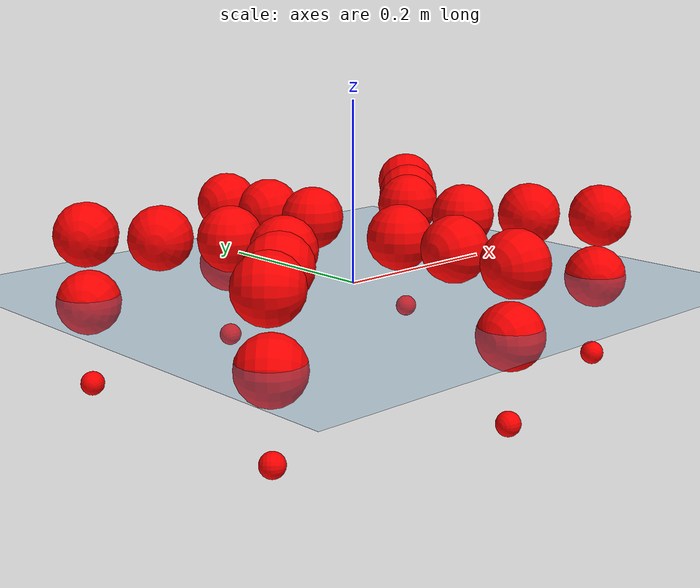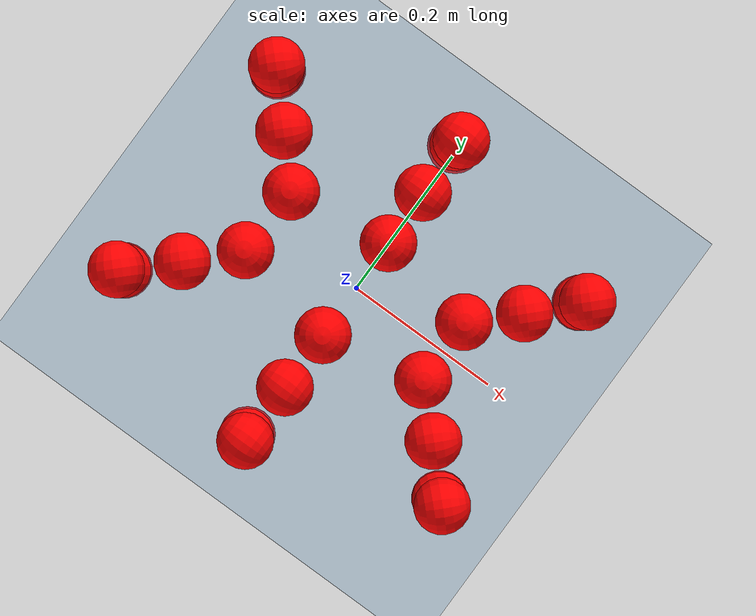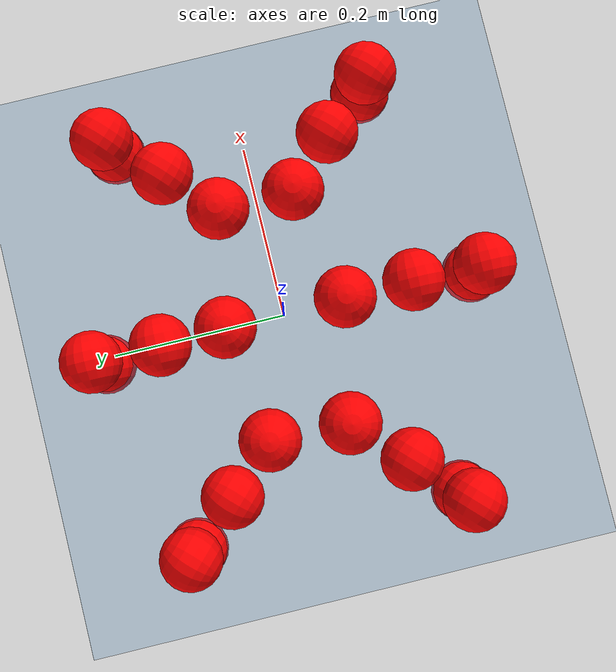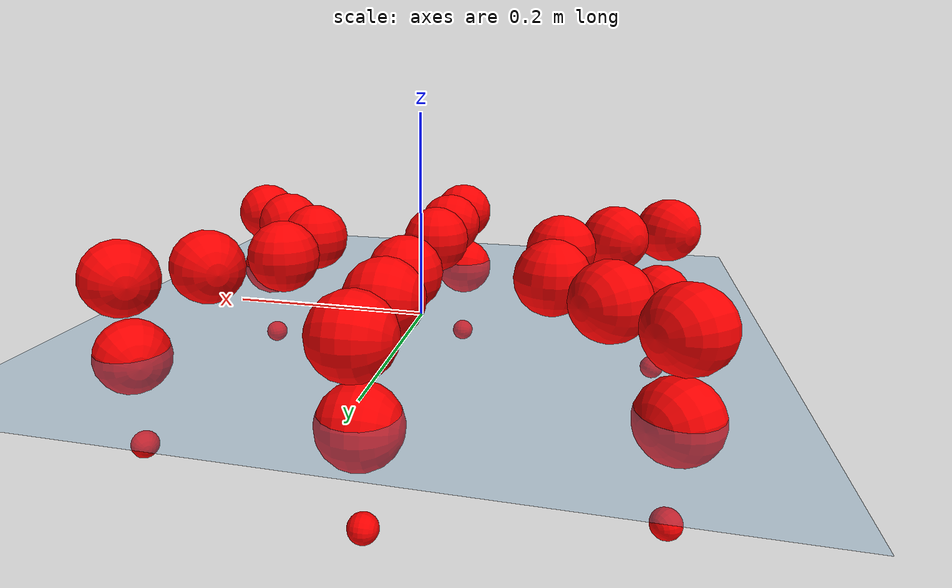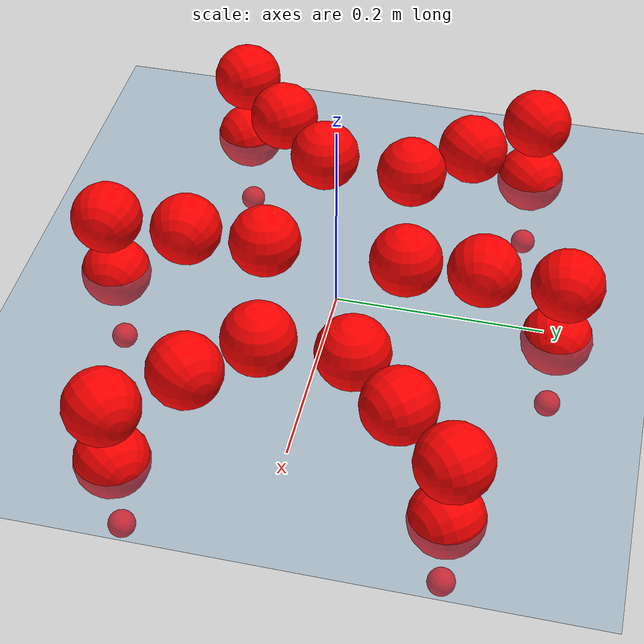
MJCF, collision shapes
<mujoco model="Golem">
  <compiler angle="radian" assetdir="assets" balanceinertia="true" inertiafromgeom="false"/>

  <option timestep="0.005" density="1.2" viscosity="2e-05"/>

  <size nkey="1"/>

  <visual>
    <quality shadowsize="8192"/>
    <map shadowclip="0.5"/>
  </visual>

  <default>
    <default class="/">
      <joint armature="0.01" damping="0.01" frictionloss="0.01"/>
      <geom contype="0" conaffinity="0" group="1" solref="-1000 -80"/>
      <site size="0.01 0.005 0.005" group="5"/>
      <general forcelimited="true" biastype="affine" gainprm="25" biasprm="0 -25 -0.5"/>
      <default class="visual">
        <geom type="mesh" group="2"/>
      </default>
      <default class="collision">
        <geom group="3"/>
      </default>
      <default class="foot">
        <geom size="0.01 0 0" condim="6" group="4" priority="1" solimp="0.015 1 0.01"/>
      </default>
      <default class="reward_collision_sphere">
        <geom group="5" rgba="1 0 0 1"/>
      </default>
    </default>
  </default>

  <asset>
    <texture type="skybox" colorspace="auto" name="//unnamed_texture_0" builtin="gradient" rgb1="0.95 0.95 0.95" rgb2="0.95 0.95 0.95" width="100" height="600"/>
    <texture type="2d" colorspace="auto" name="texplane" builtin="checker" rgb1="0.345 0.575 0.748" rgb2="0.345 0.575 0.748" markrgb="1 1 1" width="512" height="512"/>
    <material name="MatPlane" class="/" texture="texplane" texuniform="true" texrepeat="2 2" specular="0.9"/>
    <mesh name="body" class="/" file="body.stl" scale="0.001 0.001 0.001"/>
    <mesh name="coxa" class="/" file="coxa.stl" scale="0.001 0.001 0.001"/>
    <mesh name="femur" class="/" file="femur.stl" scale="0.001 0.001 0.001"/>
    <mesh name="tibia" class="/" file="tibia.stl" scale="0.001 0.001 0.001"/>
    <mesh name="tarsus" class="/" file="tarsus.stl" scale="0.001 0.001 0.001"/>
  </asset>

  <worldbody>
    <geom name="floor" class="/" size="100 100 0.125" type="plane" group="0" material="MatPlane"/>
    <light name="toplight_shadow" class="/" pos="0 0 5" dir="0.0990148 0.0990148 -0.990148" type="directional" ambient="0.04 0.04 0.04" diffuse="0.55 0.55 0.55" specular="0.12 0.12 0.12"/>
    <light name="toplight_fill" class="/" pos="0 0 5" dir="0.0990148 0.0990148 -0.990148" type="directional" castshadow="false" ambient="0.04 0.04 0.04" diffuse="0.3 0.3 0.3" specular="0.08 0.08 0.08"/>
    <body name="trunk" pos="-0.000540613 -0.000206732 -0.00228711" quat="0.999999 -0.000409633 -0.00102486 -5.57247e-05">
      <inertial pos="0.00017901 0.00242071 -0.0045586" quat="0.999957 -0.00623369 -0.00659302 0.00212272" mass="2.46092" diaginertia="0.00429464 0.00200158 0.0125286"/>
      <joint name="//unnamed_joint_0" type="free"/>
      <geom name="//unnamed_geom_1" class="/" pos="0 0 0.0664475" quat="1 0 0 0" type="mesh" rgba="0.9 0.9 0.9 1" mesh="body"/>
      <site name="imu" class="/" pos="0.0986653 0.0010185 0.117147" size="0.00867379"/>
      <camera name="track" class="/" pos="0 -1.4501 0" quat="0.707107 0.707107 0 0" mode="trackcom"/>
      <camera name="ego_camera" class="/" pos="0.10905 0 0.103824" quat="-0.5 -0.5 0.5 0.5"/>
      <body name="coxa_RR" pos="-0.151308 -0.059559 0.0678657" quat="0.382096 -0.000368959 -6.88582e-05 -0.924122">
        <inertial pos="-0.00199758 -0.00261205 -0.000810791" quat="0.999914 -0.00151345 0.00591548 0.0116423" mass="0.133934" diaginertia="0.00412649 0.00198264 0.0118293"/>
        <joint name="coxa_joint_RR" class="/" pos="0 0 0" axis="-0.00909333 -0.00296211 -0.999954" range="-3.18323 3.12867" armature="0.00832255" damping="0.018113" frictionloss="0.00980959"/>
        <geom name="//unnamed_geom_2" class="/" type="mesh" rgba="0.2 0.2 0.2 1" mesh="coxa"/>
        <geom name="//unnamed_geom_3" class="reward_collision_sphere" size="0.0346951" pos="-0.0251653 0 0"/>
        <body name="femur_RR" pos="0.0516353 0.00170399 0.00117623" quat="0.500085 -0.500094 0.499935 0.499886">
          <inertial pos="0.00111436 -0.00184529 0.00230462" quat="1 -0.000182511 -0.000255336 -0.000158948" mass="0.129393" diaginertia="0.00413949 0.00198006 0.0116465"/>
          <joint name="femur_joint_RR" class="/" pos="0 0 0" axis="-0.00908816 0.00897873 -0.999918" range="-3.12463 3.12821" armature="0.00775483" damping="0" frictionloss="0.008253"/>
          <geom name="//unnamed_geom_4" class="/" type="mesh" rgba="0.9 0.9 0.9 1" mesh="femur"/>
          <geom name="//unnamed_geom_5" class="reward_collision_sphere" size="0.0346951"/>
          <body name="tibia_RR" pos="-0.000167381 -0.0796535 -0.00250307" quat="6.23249e-05 1 2.27999e-05 3.16926e-06">
            <inertial pos="-0.00220328 0.00256306 -0.0023074" quat="0.999917 0.00861182 -0.00506724 -0.00815548" mass="0.128321" diaginertia="0.00389629 0.00194157 0.0116507"/>
            <joint name="tibia_joint_RR" class="/" pos="0 0 0" axis="0.00543656 -0.00209777 0.999983" range="-3.1401 3.08254" armature="0.0087427" damping="0.0162237" frictionloss="0.00825666"/>
            <geom name="//unnamed_geom_6" class="/" type="mesh" rgba="0.2 0.2 0.2 1" mesh="tibia"/>
            <geom name="//unnamed_geom_7" class="reward_collision_sphere" size="0.0346951"/>
            <body name="tarsus_RR" pos="0.0760237 -0.00211485 -0.000948606" quat="0.999999 0.000602708 -0.000212003 0.00106025">
              <inertial pos="0.0518295 -0.00173129 0.00172505" quat="0.499383 0.499808 0.499777 0.50103" mass="0.130933" diaginertia="0.00416044 0.00214109 0.012424"/>
              <joint name="tarsus_joint_RR" class="/" pos="0 0 0" axis="0.00100211 -0.0019139 0.999998" range="-3.14563 3.16116" armature="0.00874947" damping="0" frictionloss="0.00897592"/>
              <geom name="//unnamed_geom_8" class="/" type="mesh" rgba="0.9 0.9 0.9 1" mesh="tarsus"/>
              <geom name="foot_1" class="foot" size="0.00889818" pos="0.0939506 0 0" quat="0 -0.707107 0 0.707107"/>
              <geom name="//unnamed_geom_10" class="reward_collision_sphere" size="0.0346951"/>
              <geom name="//unnamed_geom_11" class="reward_collision_sphere" size="0.0130107" pos="0.0901758 0 0"/>
              <site name="foot_1" class="foot" pos="0.0939506 0 0" quat="0 -0.707107 0 0.707107" size="0.00867379"/>
            </body>
          </body>
        </body>
      </body>
      <body name="coxa_RM" pos="0.00148898 -0.0943559 0.064354" quat="0.706836 0.000425702 0.000815458 -0.707377">
        <inertial pos="0.000369597 -0.00265013 -0.0013657" quat="0.999992 0.00200357 0.00328385 0.000713629" mass="0.125088" diaginertia="0.00386547 0.00187107 0.0118772"/>
        <joint name="coxa_joint_RM" class="/" pos="0 0 0" axis="0.000851528 0.000330057 -1" stiffness="0.00683506" range="-3.14619 3.15441" armature="0.00781398" damping="0.0154152" frictionloss="0.00985831"/>
        <geom name="//unnamed_geom_12" class="/" type="mesh" rgba="0.2 0.2 0.2 1" mesh="coxa"/>
        <geom name="//unnamed_geom_13" class="reward_collision_sphere" size="0.0346951" pos="-0.0251653 0 0"/>
        <body name="femur_RM" pos="0.0523858 0.00042431 0.000399049" quat="0.500495 -0.500075 0.499671 0.499758">
          <inertial pos="7.15865e-05 -0.00278258 -0.000436801" quat="0.999943 0.0106271 2.38077e-05 -0.000955741" mass="0.132221" diaginertia="0.00430131 0.00195883 0.0122159"/>
          <joint name="femur_joint_RM" class="/" pos="0 0 0" axis="-0.00196021 0.00647476 -0.999977" range="-3.19414 3.19318" armature="0.00954372" damping="0.0253663" frictionloss="0.00894662"/>
          <geom name="//unnamed_geom_14" class="/" type="mesh" rgba="0.9 0.9 0.9 1" mesh="femur"/>
          <geom name="//unnamed_geom_15" class="reward_collision_sphere" size="0.0346951"/>
          <body name="tibia_RM" pos="0.000846049 -0.0799129 -0.000617191" quat="-9.84609e-06 1 -0.000101341 -0.000242553">
            <inertial pos="-0.00116197 -0.00077399 -0.00237539" quat="0.999906 0.00453513 0.0116875 0.00560567" mass="0.122297" diaginertia="0.0040913 0.00193451 0.0120133"/>
            <joint name="tibia_joint_RM" class="/" pos="0 0 0" axis="0.00011926 -0.00164481 0.999999" stiffness="0.00868105" range="-3.19504 3.08574" armature="0.00740699" damping="0" frictionloss="0.00813125"/>
            <geom name="//unnamed_geom_16" class="/" type="mesh" rgba="0.2 0.2 0.2 1" mesh="tibia"/>
            <geom name="//unnamed_geom_17" class="reward_collision_sphere" size="0.0346951"/>
            <body name="tarsus_RM" pos="0.0728264 -0.00191336 0.00229195" quat="0.999999 0.000541098 0.00075713 0.00036607">
              <inertial pos="0.048361 0.000200641 -0.00167899" quat="0.494389 0.509562 0.492072 0.503777" mass="0.130686" diaginertia="0.00416271 0.0019984 0.0120719"/>
              <joint name="tarsus_joint_RM" class="/" pos="0 0 0" axis="0.0032043 -0.00112617 0.999994" range="-3.16013 3.16547" armature="0.00880872" damping="0.0019565" frictionloss="0.00885612"/>
              <geom name="//unnamed_geom_18" class="/" type="mesh" rgba="0.9 0.9 0.9 1" mesh="tarsus"/>
              <geom name="foot_2" class="foot" size="0.00786601" pos="0.0939506 0 0" quat="0 -0.707107 0 0.707107"/>
              <geom name="//unnamed_geom_20" class="reward_collision_sphere" size="0.0346951"/>
              <geom name="//unnamed_geom_21" class="reward_collision_sphere" size="0.0130107" pos="0.0901758 0 0"/>
              <site name="foot_2" class="foot" pos="0.0939506 0 0" quat="0 -0.707107 0 0.707107" size="0.00867379"/>
            </body>
          </body>
        </body>
      </body>
      <body name="coxa_RF" pos="0.14787 -0.0592172 0.0659149" quat="0.924203 -0.000794595 -0.000181651 -0.381901">
        <inertial pos="0.00234668 -0.00250448 0.000650771" quat="1 1.16763e-05 -6.01216e-06 4.95686e-05" mass="0.132543" diaginertia="0.00431324 0.0020415 0.011999"/>
        <joint name="coxa_joint_RF" class="/" pos="0 0 0" axis="0.00966784 0.00267155 -0.99995" range="-3.14332 3.15289" armature="0.00852343" damping="0" frictionloss="0.00794211"/>
        <geom name="//unnamed_geom_22" class="/" type="mesh" rgba="0.2 0.2 0.2 1" mesh="coxa"/>
        <geom name="//unnamed_geom_23" class="reward_collision_sphere" size="0.0346951" pos="-0.0251653 0 0"/>
        <body name="femur_RF" pos="0.0489312 0.000963479 0.00157334" quat="0.50033 -0.500038 0.499436 0.500196">
          <inertial pos="-0.000601109 0.00114464 -0.00194684" quat="0.999916 -0.0116901 -0.00559518 -0.000829099" mass="0.127151" diaginertia="0.00403249 0.00192685 0.0118828"/>
          <joint name="femur_joint_RF" class="/" pos="0 0 0" axis="-0.00352798 0.00171508 -0.999992" range="-3.09329 3.18854" armature="0.00923636" damping="0.0068364" frictionloss="0.00885637"/>
          <geom name="//unnamed_geom_24" class="/" type="mesh" rgba="0.9 0.9 0.9 1" mesh="femur"/>
          <geom name="//unnamed_geom_25" class="reward_collision_sphere" size="0.0346951"/>
          <body name="tibia_RF" pos="0.00137421 -0.078834 -0.00174886" quat="-0.000205429 1 -0.000107695 2.97418e-05">
            <inertial pos="0.00191355 -0.00268285 0.00048934" quat="0.999957 0.000357255 0.0076253 -0.00533801" mass="0.131185" diaginertia="0.00405137 0.00197828 0.0121748"/>
            <joint name="tibia_joint_RF" class="/" pos="0 0 0" axis="0.00102168 -0.00165769 0.999998" stiffness="0.0102973" range="-3.159 3.08379" armature="0.00885844" damping="0.00645354" frictionloss="0.00871816"/>
            <geom name="//unnamed_geom_26" class="/" type="mesh" rgba="0.2 0.2 0.2 1" mesh="tibia"/>
            <geom name="//unnamed_geom_27" class="reward_collision_sphere" size="0.0346951"/>
            <body name="tarsus_RF" pos="0.0702247 -0.00267271 7.64262e-05" quat="0.999999 0.00064639 0.000990212 -0.000744632">
              <inertial pos="0.0506169 -0.000811823 8.96114e-05" quat="0.500494 0.500214 0.499285 0.500006" mass="0.129739" diaginertia="0.0042021 0.00204225 0.0118518"/>
              <joint name="tarsus_joint_RF" class="/" pos="0 0 0" axis="-0.000468542 0.000300007 1" range="-3.13863 3.14175" armature="0.00853016" damping="0" frictionloss="0.00905753"/>
              <geom name="//unnamed_geom_28" class="/" type="mesh" rgba="0.9 0.9 0.9 1" mesh="tarsus"/>
              <geom name="foot_3" class="foot" size="0.00871896" pos="0.0939506 0 0" quat="0 -0.707107 0 0.707107"/>
              <geom name="//unnamed_geom_30" class="reward_collision_sphere" size="0.0346951"/>
              <geom name="//unnamed_geom_31" class="reward_collision_sphere" size="0.0130107" pos="0.0901758 0 0"/>
              <site name="foot_3" class="foot" pos="0.0939506 0 0" quat="0 -0.707107 0 0.707107" size="0.00867379"/>
            </body>
          </body>
        </body>
      </body>
      <body name="coxa_LR" pos="-0.148943 0.0651261 0.0645103" quat="0.382627 5.7326e-05 -0.000106039 0.923903">
        <inertial pos="-0.000223824 -0.00179734 -0.0024582" quat="0.9999 -0.00602229 0.00622887 0.011171" mass="0.124735" diaginertia="0.00405001 0.00202569 0.0119238"/>
        <joint name="coxa_joint_LR" class="/" pos="0 0 0" axis="0.0105945 0.00252142 -0.999941" stiffness="0.0139226" range="-3.14897 3.15486" armature="0.00936888" damping="0.0131418" frictionloss="0.00989383"/>
        <geom name="//unnamed_geom_32" class="/" type="mesh" rgba="0.2 0.2 0.2 1" mesh="coxa"/>
        <geom name="//unnamed_geom_33" class="reward_collision_sphere" size="0.0346951" pos="-0.0251653 0 0"/>
        <body name="femur_LR" pos="0.0483037 -0.00271854 -0.000246599" quat="0.500668 -0.499798 0.49902 0.500513">
          <inertial pos="0.000886524 -0.0020998 -0.00201916" quat="0.999928 -0.00299129 0.0116018 -0.000101481" mass="0.130419" diaginertia="0.00403269 0.00194796 0.0116778"/>
          <joint name="femur_joint_LR" class="/" pos="0 0 0" axis="-0.000255205 0.00853969 0.999964" range="-3.13023 3.13724" armature="0.00985589" damping="0.0161448" frictionloss="0.00907915"/>
          <geom name="//unnamed_geom_34" class="/" type="mesh" rgba="0.9 0.9 0.9 1" mesh="femur"/>
          <geom name="//unnamed_geom_35" class="reward_collision_sphere" size="0.0346951"/>
          <body name="tibia_LR" pos="-0.00259933 -0.0790453 -0.00346212" quat="-0.000317166 1 -0.000288674 9.47209e-05">
            <inertial pos="0.00089511 0.00263789 0.00126906" quat="1 1.72391e-06 2.21666e-06 4.72524e-06" mass="0.134398" diaginertia="0.00416226 0.00205898 0.0128717"/>
            <joint name="tibia_joint_LR" class="/" pos="0 0 0" axis="0.00622733 0.00206643 -0.999978" stiffness="0.00113521" range="-3.08588 3.11231" armature="0.00928953" damping="0.00345857" frictionloss="0.00989099"/>
            <geom name="//unnamed_geom_36" class="/" type="mesh" rgba="0.2 0.2 0.2 1" mesh="tibia"/>
            <geom name="//unnamed_geom_37" class="reward_collision_sphere" size="0.0346951"/>
            <body name="tarsus_LR" pos="0.0731799 -5.09381e-05 -0.0011879" quat="1 -8.3455e-06 -4.24746e-05 0.000137948">
              <inertial pos="0.052333 0.00116094 -0.00108936" quat="0.500305 0.499557 0.500616 0.499521" mass="0.129325" diaginertia="0.00431436 0.00202005 0.0119908"/>
              <joint name="tarsus_joint_LR" class="/" pos="0 0 0" axis="0.00182255 0.00372441 -0.999991" range="-3.08664 3.08799" armature="0.00738212" damping="0.0181023" frictionloss="0.00875341"/>
              <geom name="//unnamed_geom_38" class="/" type="mesh" rgba="0.9 0.9 0.9 1" mesh="tarsus"/>
              <geom name="foot_4" class="foot" size="0.00857623" pos="0.0939506 0 0" quat="0.707107 0 -0.707107 0"/>
              <geom name="//unnamed_geom_40" class="reward_collision_sphere" size="0.0346951"/>
              <geom name="//unnamed_geom_41" class="reward_collision_sphere" size="0.0130107" pos="0.0901758 0 0"/>
              <site name="foot_4" class="foot" pos="0.0939506 0 0" quat="0.707107 0 -0.707107 0" size="0.00867379"/>
            </body>
          </body>
        </body>
      </body>
      <body name="coxa_LM" pos="-0.000217501 0.0914618 0.0652267" quat="0.707193 0.000109478 0.000160204 0.707021">
        <inertial pos="0.000409625 -0.00240079 0.00153332" quat="0.999937 0.00888033 -0.00546541 0.00408627" mass="0.134999" diaginertia="0.00408623 0.00200248 0.0119774"/>
        <joint name="coxa_joint_LM" class="/" pos="0 0 0" axis="0.0130722 -0.000164344 -0.999915" range="-3.12307 3.1134" armature="0.00782574" damping="0.0198371" frictionloss="0.00865426"/>
        <geom name="//unnamed_geom_42" class="/" type="mesh" rgba="0.2 0.2 0.2 1" mesh="coxa"/>
        <geom name="//unnamed_geom_43" class="reward_collision_sphere" size="0.0346951" pos="-0.0251653 0 0"/>
        <body name="femur_LM" pos="0.0482081 0.00237433 -1.56165e-05" quat="0.49994 -0.499852 0.500148 0.500061">
          <inertial pos="-0.00184908 0.00250431 -0.0028129" quat="0.999991 0.00268658 0.00251257 0.00214604" mass="0.129877" diaginertia="0.00398911 0.00200931 0.0117574"/>
          <joint name="femur_joint_LM" class="/" pos="0 0 0" axis="-0.00814541 -0.0108718 0.999908" stiffness="0.0112018" range="-3.14421 3.1445" armature="0.00890638" damping="0" frictionloss="0.00988436"/>
          <geom name="//unnamed_geom_44" class="/" type="mesh" rgba="0.9 0.9 0.9 1" mesh="femur"/>
          <geom name="//unnamed_geom_45" class="reward_collision_sphere" size="0.0346951"/>
          <body name="tibia_LM" pos="0.0027417 -0.0780299 -0.000128601" quat="-0.000299081 1 0.000133616 -0.000155956">
            <inertial pos="-0.000159192 0.000194507 0.00287521" quat="0.999903 0.00662492 -0.0122653 0.000606746" mass="0.128855" diaginertia="0.00420409 0.00203978 0.0118031"/>
            <joint name="tibia_joint_LM" class="/" pos="0 0 0" axis="0.0011112 -0.00206661 -0.999997" stiffness="0.0116881" range="-3.16092 3.18945" armature="0.00844752" damping="0" frictionloss="0.00954237"/>
            <geom name="//unnamed_geom_46" class="/" type="mesh" rgba="0.2 0.2 0.2 1" mesh="tibia"/>
            <geom name="//unnamed_geom_47" class="reward_collision_sphere" size="0.0346951"/>
            <body name="tarsus_LM" pos="0.0732227 -0.00365977 -0.00248617" quat="1 -2.31366e-05 -1.1257e-05 -4.72257e-05">
              <inertial pos="0.0525547 -0.000516437 -0.000989172" quat="0.500351 0.499487 0.500125 0.500037" mass="0.130407" diaginertia="0.00416609 0.00200712 0.0126313"/>
              <joint name="tarsus_joint_LM" class="/" pos="0 0 0" axis="-0.000613173 0.00170516 -0.999998" range="-3.12214 3.14679" armature="0.00877332" damping="0.00214433" frictionloss="0.00845976"/>
              <geom name="//unnamed_geom_48" class="/" type="mesh" rgba="0.9 0.9 0.9 1" mesh="tarsus"/>
              <geom name="foot_5" class="foot" size="0.00874765" pos="0.0939506 0 0" quat="0.707107 0 -0.707107 0"/>
              <geom name="//unnamed_geom_50" class="reward_collision_sphere" size="0.0346951"/>
              <geom name="//unnamed_geom_51" class="reward_collision_sphere" size="0.0130107" pos="0.0901758 0 0"/>
              <site name="foot_5" class="foot" pos="0.0939506 0 0" quat="0.707107 0 -0.707107 0" size="0.00867379"/>
            </body>
          </body>
        </body>
      </body>
      <body name="coxa_LF" pos="0.146501 0.0614101 0.0665847" quat="0.923833 7.16836e-05 2.116e-05 0.382796">
        <inertial pos="0.00294265 0.0012786 0.00139524" quat="0.999937 -0.0108555 0.00272588 -0.000965259" mass="0.129302" diaginertia="0.00421725 0.00200408 0.0120638"/>
        <joint name="coxa_joint_LF" class="/" pos="0 0 0" axis="0.000125473 -0.00018979 -1" range="-3.15749 3.08792" armature="0.00773912" damping="0.00814162" frictionloss="0.00910947"/>
        <geom name="//unnamed_geom_52" class="/" type="mesh" rgba="0.2 0.2 0.2 1" mesh="coxa"/>
        <geom name="//unnamed_geom_53" class="reward_collision_sphere" size="0.0346951" pos="-0.0251653 0 0"/>
        <body name="femur_LF" pos="0.0481709 -0.000996391 -2.97383e-05" quat="0.499765 -0.500145 0.500192 0.499898">
          <inertial pos="-0.00271565 0.00274956 -7.73994e-05" quat="0.999961 -0.00754571 0.00288801 -0.00351515" mass="0.129124" diaginertia="0.00401655 0.00198132 0.0121156"/>
          <joint name="femur_joint_LF" class="/" pos="0 0 0" axis="-0.00493451 -0.0116314 0.99992" range="-3.18909 3.12196" armature="0.00867803" damping="0" frictionloss="0.00864466"/>
          <geom name="//unnamed_geom_54" class="/" type="mesh" rgba="0.9 0.9 0.9 1" mesh="femur"/>
          <geom name="//unnamed_geom_55" class="reward_collision_sphere" size="0.0346951"/>
          <body name="tibia_LF" pos="-0.00149375 -0.0766258 0.00234668" quat="-0.0011367 0.999999 0.000579937 0.000499061">
            <inertial pos="-0.00271272 -8.40725e-05 0.000771036" quat="0.999977 -0.00387363 -0.00437746 -0.00355751" mass="0.134172" diaginertia="0.00401898 0.00198319 0.0119185"/>
            <joint name="tibia_joint_LF" class="/" pos="0 0 0" axis="-0.00133649 0.00221956 -0.999997" stiffness="0.00787657" range="-3.14081 3.17882" armature="0.00842198" damping="0.00879318" frictionloss="0.00895116"/>
            <geom name="//unnamed_geom_56" class="/" type="mesh" rgba="0.2 0.2 0.2 1" mesh="tibia"/>
            <geom name="//unnamed_geom_57" class="reward_collision_sphere" size="0.0346951"/>
            <body name="tarsus_LF" pos="0.0744195 -0.00214077 0.00150529" quat="1 -0.000442764 -9.91325e-05 4.62243e-05">
              <inertial pos="0.0480895 -0.00137861 -0.00290289" quat="0.500473 0.49989 0.499417 0.500219" mass="0.12312" diaginertia="0.00403903 0.00194997 0.0118889"/>
              <joint name="tarsus_joint_LF" class="/" pos="0 0 0" axis="0.00612916 -0.00919609 -0.999939" range="-3.14768 3.18674" armature="0.00773071" damping="0.0198252" frictionloss="0.00853147"/>
              <geom name="//unnamed_geom_58" class="/" type="mesh" rgba="0.9 0.9 0.9 1" mesh="tarsus"/>
              <geom name="foot_6" class="foot" size="0.00959042" pos="0.0939506 0 0" quat="0.707107 0 -0.707107 0"/>
              <geom name="//unnamed_geom_60" class="reward_collision_sphere" size="0.0346951"/>
              <geom name="//unnamed_geom_61" class="reward_collision_sphere" size="0.0130107" pos="0.0901758 0 0"/>
              <site name="foot_6" class="foot" pos="0.0939506 0 0" quat="0.707107 0 -0.707107 0" size="0.00867379"/>
            </body>
          </body>
        </body>
      </body>
    </body>
  </worldbody>

  <contact>
    <pair class="/" geom1="floor" geom2="foot_1" name="//unnamed_contact_0"/>
    <pair class="/" geom1="floor" geom2="foot_2" name="//unnamed_contact_1"/>
    <pair class="/" geom1="floor" geom2="foot_3" name="//unnamed_contact_2"/>
    <pair class="/" geom1="floor" geom2="foot_4" name="//unnamed_contact_3"/>
    <pair class="/" geom1="floor" geom2="foot_5" name="//unnamed_contact_4"/>
    <pair class="/" geom1="floor" geom2="foot_6" name="//unnamed_contact_5"/>
  </contact>

  <actuator>
    <general name="coxa_joint_RR" class="/" joint="coxa_joint_RR" forcerange="-6.55943 6.55943" gainprm="20.773" biasprm="0 -20.773 -0.465054"/>
    <general name="femur_joint_RR" class="/" joint="femur_joint_RR" forcerange="-6.98246 6.98246" gainprm="20.773" biasprm="0 -20.773 -0.465054"/>
    <general name="tibia_joint_RR" class="/" joint="tibia_joint_RR" forcerange="-5.71394 5.71394" gainprm="20.773" biasprm="0 -20.773 -0.465054"/>
    <general name="tarsus_joint_RR" class="/" joint="tarsus_joint_RR" forcerange="-6.72927 6.72927" gainprm="20.773" biasprm="0 -20.773 -0.465054"/>
    <general name="coxa_joint_RM" class="/" joint="coxa_joint_RM" forcerange="-6.6425 6.6425" gainprm="20.773" biasprm="0 -20.773 -0.465054"/>
    <general name="femur_joint_RM" class="/" joint="femur_joint_RM" forcerange="-6.52268 6.52268" gainprm="20.773" biasprm="0 -20.773 -0.465054"/>
    <general name="tibia_joint_RM" class="/" joint="tibia_joint_RM" forcerange="-6.75958 6.75958" gainprm="20.773" biasprm="0 -20.773 -0.465054"/>
    <general name="tarsus_joint_RM" class="/" joint="tarsus_joint_RM" forcerange="-5.71686 5.71686" gainprm="20.773" biasprm="0 -20.773 -0.465054"/>
    <general name="coxa_joint_RF" class="/" joint="coxa_joint_RF" forcerange="-6.98179 6.98179" gainprm="20.773" biasprm="0 -20.773 -0.465054"/>
    <general name="femur_joint_RF" class="/" joint="femur_joint_RF" forcerange="-6.38168 6.38168" gainprm="20.773" biasprm="0 -20.773 -0.465054"/>
    <general name="tibia_joint_RF" class="/" joint="tibia_joint_RF" forcerange="-6.3194 6.3194" gainprm="20.773" biasprm="0 -20.773 -0.465054"/>
    <general name="tarsus_joint_RF" class="/" joint="tarsus_joint_RF" forcerange="-6.33213 6.33213" gainprm="20.773" biasprm="0 -20.773 -0.465054"/>
    <general name="coxa_joint_LR" class="/" joint="coxa_joint_LR" forcerange="-6.87836 6.87836" gainprm="20.773" biasprm="0 -20.773 -0.465054"/>
    <general name="femur_joint_LR" class="/" joint="femur_joint_LR" forcerange="-6.36709 6.36709" gainprm="20.773" biasprm="0 -20.773 -0.465054"/>
    <general name="tibia_joint_LR" class="/" joint="tibia_joint_LR" forcerange="-7.00513 7.00513" gainprm="20.773" biasprm="0 -20.773 -0.465054"/>
    <general name="tarsus_joint_LR" class="/" joint="tarsus_joint_LR" forcerange="-6.82088 6.82088" gainprm="20.773" biasprm="0 -20.773 -0.465054"/>
    <general name="coxa_joint_LM" class="/" joint="coxa_joint_LM" forcerange="-5.69992 5.69992" gainprm="20.773" biasprm="0 -20.773 -0.465054"/>
    <general name="femur_joint_LM" class="/" joint="femur_joint_LM" forcerange="-6.55512 6.55512" gainprm="20.773" biasprm="0 -20.773 -0.465054"/>
    <general name="tibia_joint_LM" class="/" joint="tibia_joint_LM" forcerange="-6.90885 6.90885" gainprm="20.773" biasprm="0 -20.773 -0.465054"/>
    <general name="tarsus_joint_LM" class="/" joint="tarsus_joint_LM" forcerange="-6.68614 6.68614" gainprm="20.773" biasprm="0 -20.773 -0.465054"/>
    <general name="coxa_joint_LF" class="/" joint="coxa_joint_LF" forcerange="-5.65931 5.65931" gainprm="20.773" biasprm="0 -20.773 -0.465054"/>
    <general name="femur_joint_LF" class="/" joint="femur_joint_LF" forcerange="-5.66157 5.66157" gainprm="20.773" biasprm="0 -20.773 -0.465054"/>
    <general name="tibia_joint_LF" class="/" joint="tibia_joint_LF" forcerange="-6.07685 6.07685" gainprm="20.773" biasprm="0 -20.773 -0.465054"/>
    <general name="tarsus_joint_LF" class="/" joint="tarsus_joint_LF" forcerange="-5.81143 5.81143" gainprm="20.773" biasprm="0 -20.773 -0.465054"/>
  </actuator>

  <sensor>
    <gyro site="imu" name="imu_angular_velocity"/>
    <velocimeter site="imu" name="imu_linear_velocity"/>
    <framelinvel objtype="site" objname="foot_1" name="foot_1_global_linear_velocity"/>
    <framelinvel objtype="site" objname="foot_2" name="foot_2_global_linear_velocity"/>
    <framelinvel objtype="site" objname="foot_3" name="foot_3_global_linear_velocity"/>
    <framelinvel objtype="site" objname="foot_4" name="foot_4_global_linear_velocity"/>
    <framelinvel objtype="site" objname="foot_5" name="foot_5_global_linear_velocity"/>
    <framelinvel objtype="site" objname="foot_6" name="foot_6_global_linear_velocity"/>
  </sensor>

  <keyframe>
    <key name="home" qpos="0 0 0.1457 1 0 0 0 0 0 0 0 0 0 0 0 0 0 0 0 0 0 0 0 0 0 0 0 0 0 0 0"/>
  </keyframe>
</mujoco>
